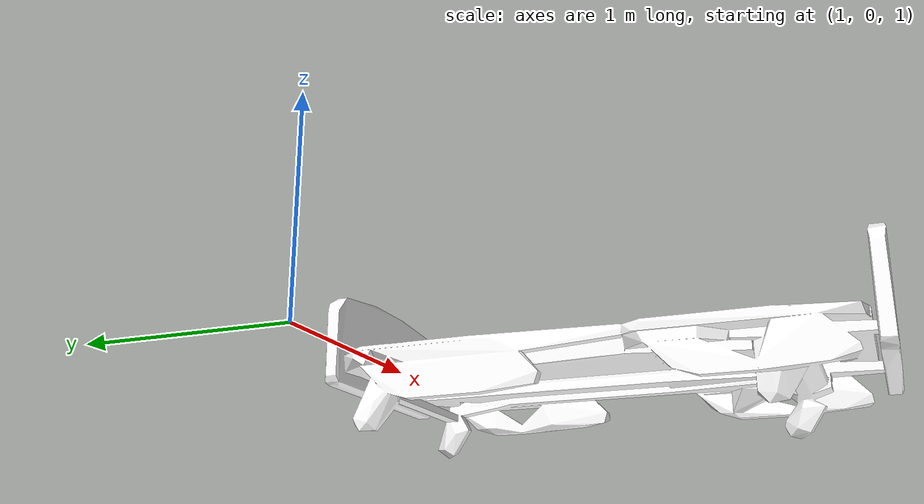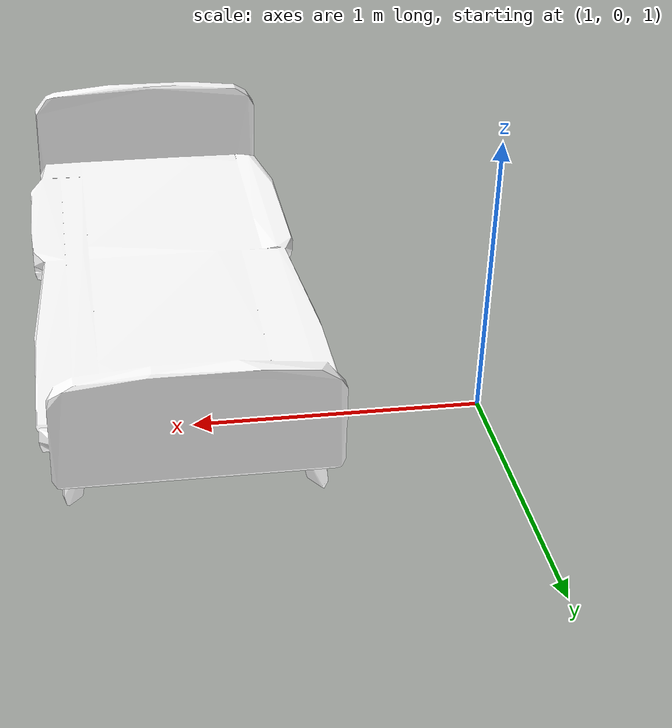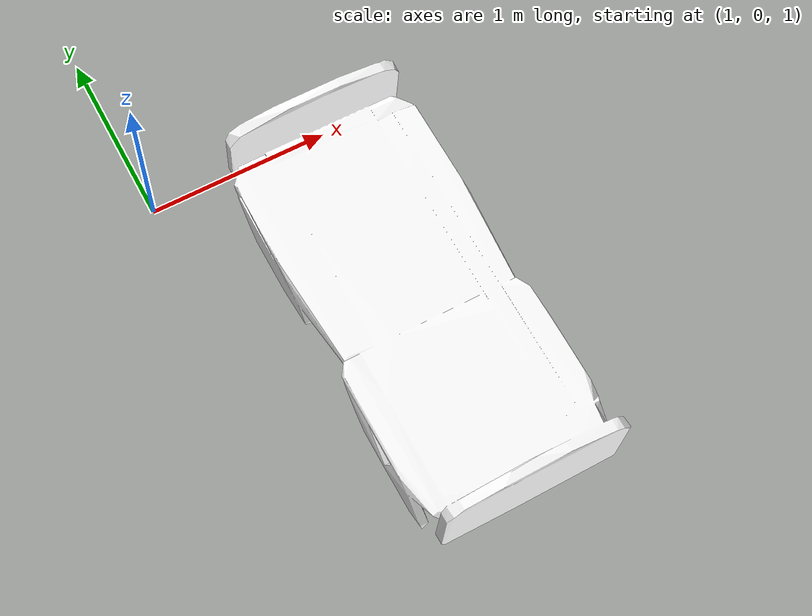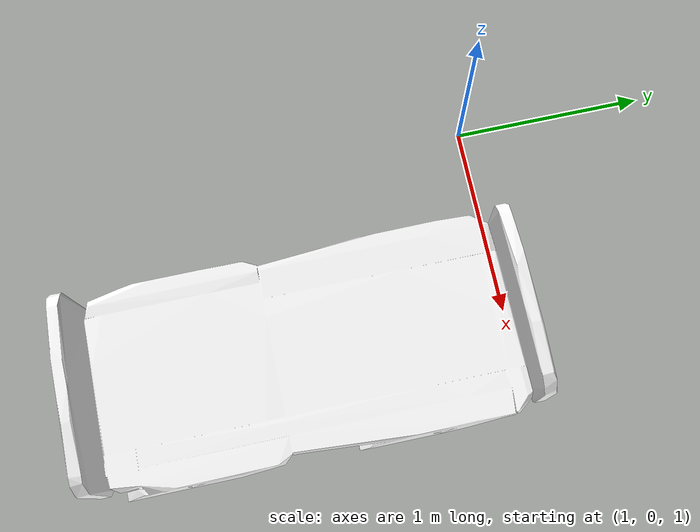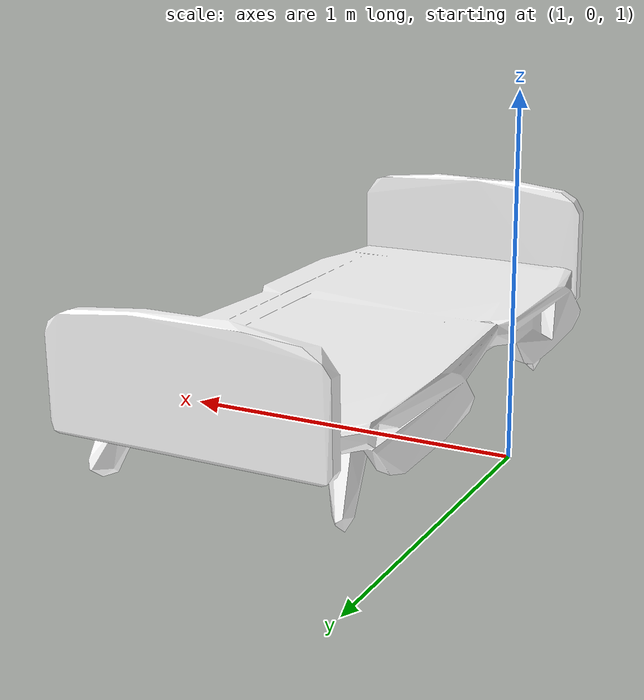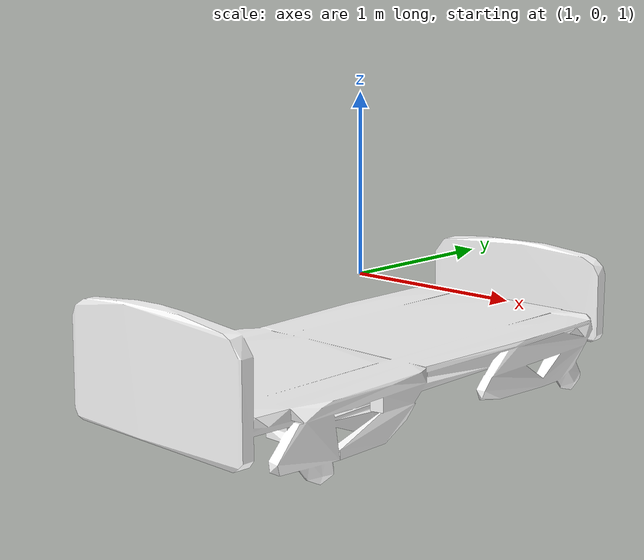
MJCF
<mujoco model="hospital_bed">
  <asset>
    <material name="white" rgba="1 1 1 1"/>
    <mesh name="bed_mesh" file="meshes/hospital_bed_frame.stl" />
    <mesh name="bed_mesh_vis" file="meshes/hospital_bed_frame_vis.stl" />
  </asset>
  <worldbody>
    <body>
      <body name="object" pos="2 -1 1" quat="0.5 0.5 -0.5 -0.5">
        <geom name="bed_col" type="mesh" mesh="bed_mesh" mass="50" material="white" group="0"/>
      </body>
      <site rgba="0 0 0 0" size="0.005" pos="0 0 -0.05" name="bottom_site"/>
      <site rgba="0 0 0 0" size="0.005" pos="0 0 0.05" name="top_site"/>
      <site rgba="0 0 0 0" size="0.005" pos="0.05 0.05 0" name="horizontal_radius_site"/>
    </body>
  </worldbody>
</mujoco>
